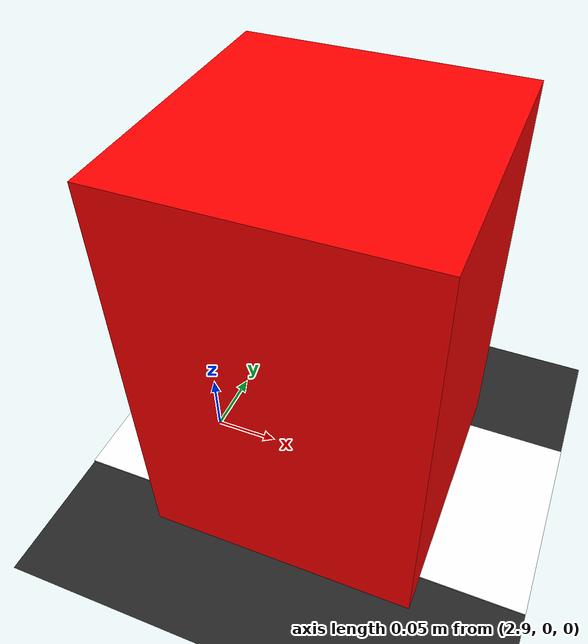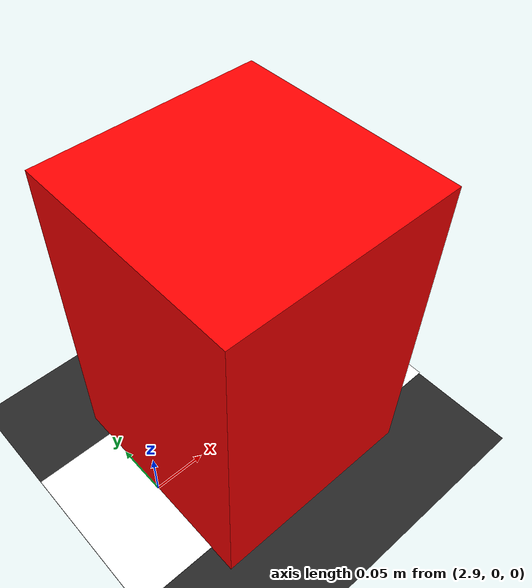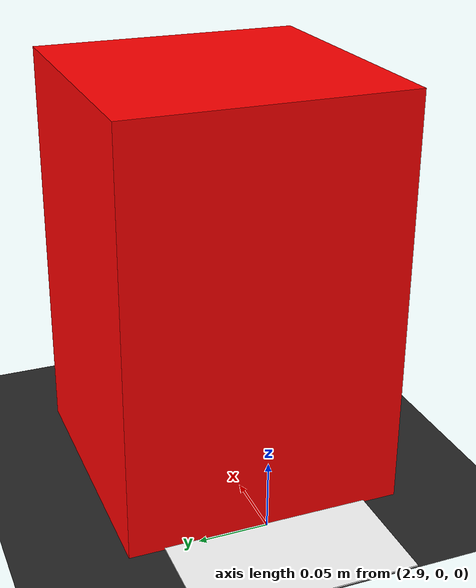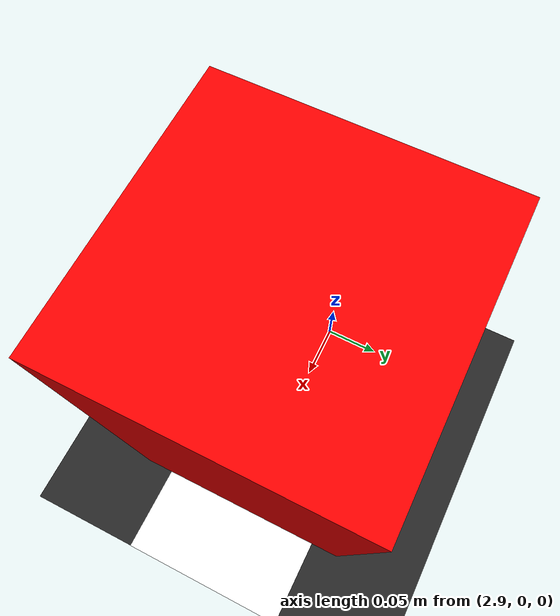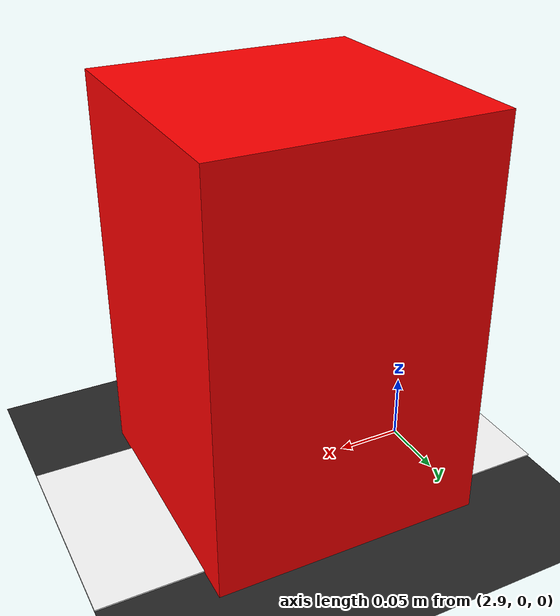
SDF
<?xml version="1.0" ?>
<sdf version="1.9">
  <world name="line_world">

    <physics name="1ms" type="ignored">
      <max_step_size>0.001</max_step_size>
      <real_time_factor>1.0</real_time_factor>
    </physics>

    <plugin filename="gz-sim-physics-system" name="gz::sim::systems::Physics"/>
    <plugin filename="gz-sim-user-commands-system" name="gz::sim::systems::UserCommands"/>
    <plugin filename="gz-sim-scene-broadcaster-system" name="gz::sim::systems::SceneBroadcaster"/>
    <plugin filename="gz-sim-sensors-system" name="gz::sim::systems::Sensors">
      <render_engine>ogre2</render_engine>
    </plugin>

    <!-- Configuración dinámica de iluminación -->
    <scene>
      <ambient>0.5 0.5 0.5 1</ambient>
      <background>0.7 0.7 0.7 1</background>
      <shadows>true</shadows>
    </scene>

    <light type="directional" name="sun">
      <cast_shadows>true</cast_shadows>
      <pose>0 0 10 0 0 0</pose>
      <diffuse>0.8 0.8 0.8 1</diffuse>
      <specular>0.2 0.2 0.2 1</specular>
      <direction>-0.5 0.1 -0.9</direction>
    </light>

    <!-- Piso / pista de alto contraste -->
    <model name="ground_plane">
      <static>true</static>
      <link name="link">
        <collision name="collision">
          <geometry><plane><normal>0 0 1</normal><size>50 50</size></plane></geometry>
          <surface>
            <friction><ode><mu>1.0</mu><mu2>1.0</mu2></ode></friction>
          </surface>
        </collision>
        <visual name="visual">
          <geometry><plane><normal>0 0 1</normal><size>50 50</size></plane></geometry>
          <material>
            <ambient>0.15 0.15 0.15 1</ambient>
            <diffuse>0.15 0.15 0.15 1</diffuse>
          </material>
        </visual>
      </link>
    </model>

    <!-- Línea blanca de navegación (marca central, malla simplificada como caja delgada) -->
    <model name="line_marking">
      <static>true</static>
      <pose>2 0 0.001 0 0 0</pose>
      <link name="link">
        <visual name="visual">
          <geometry><box><size>6 0.15 0.001</size></box></geometry>
          <material>
            <ambient>1 1 1 1</ambient>
            <diffuse>1 1 1 1</diffuse>
          </material>
        </visual>
      </link>
    </model>

    <!-- Obstáculo intencional: caja roja estática, detonante de la FSM -->
    <model name="red_obstacle">
      <static>true</static>
      <pose>3 0 0.15 0 0 0</pose>
      <link name="link">
        <collision name="collision">
          <geometry><box><size>0.2 0.2 0.3</size></box></geometry>
        </collision>
        <visual name="visual">
          <geometry><box><size>0.2 0.2 0.3</size></box></geometry>
          <material>
            <ambient>1 0 0 1</ambient>
            <diffuse>1 0 0 1</diffuse>
          </material>
        </visual>
      </link>
    </model>

  </world>
</sdf>
